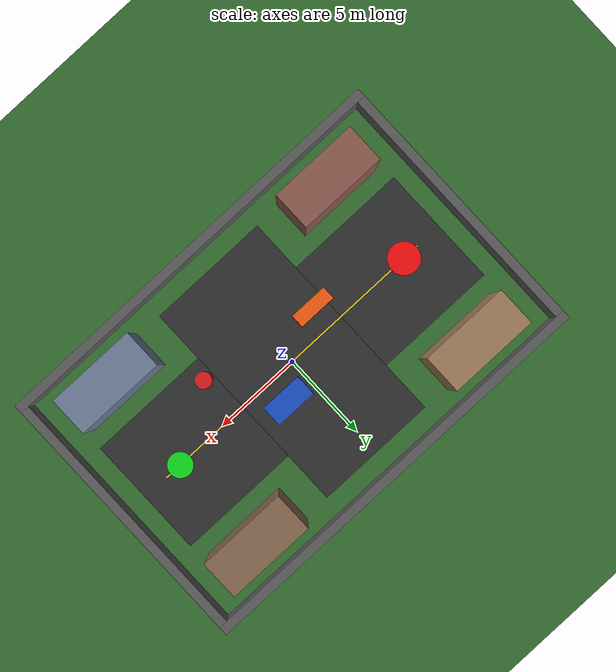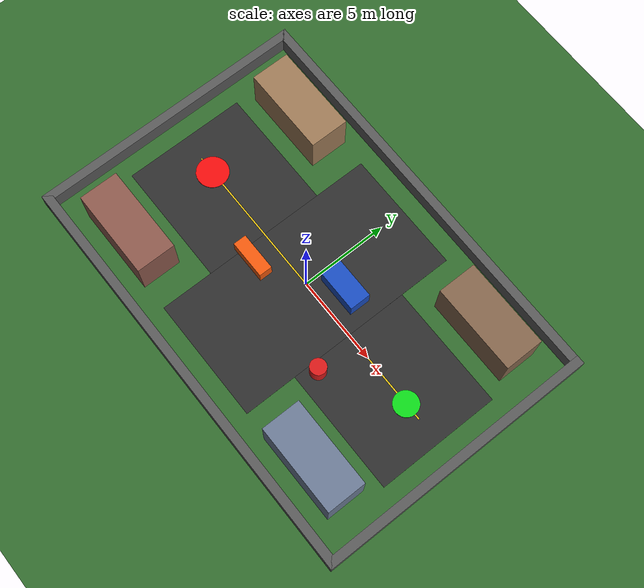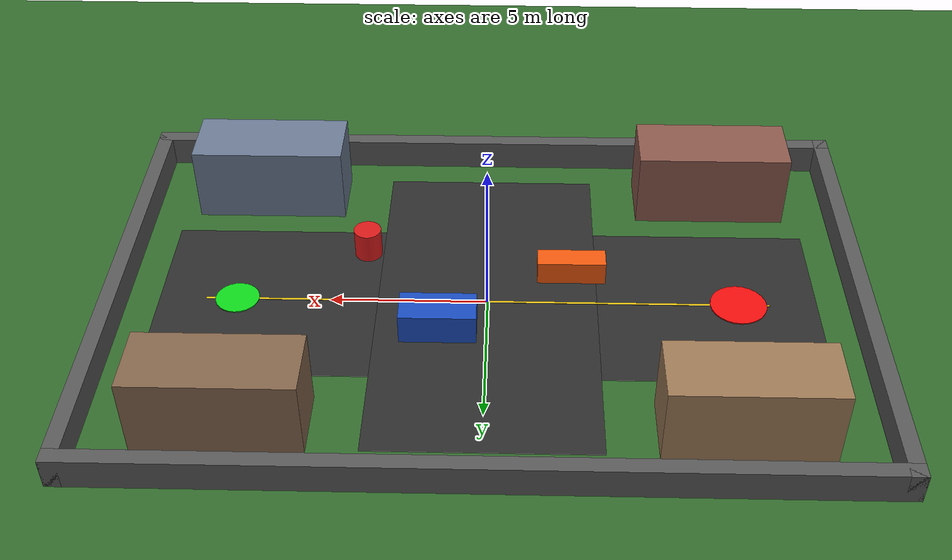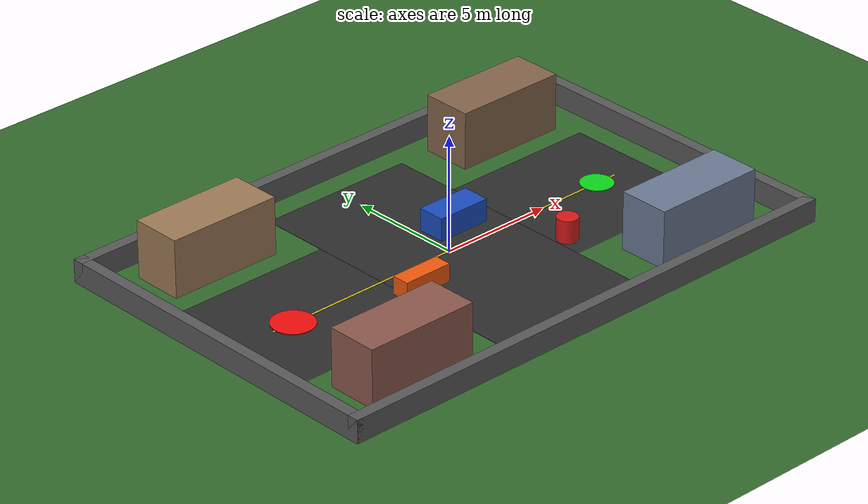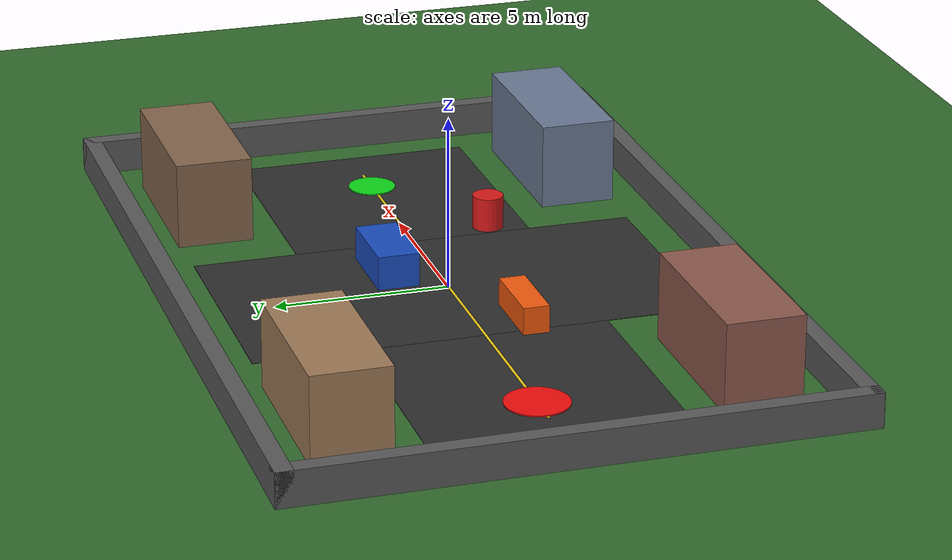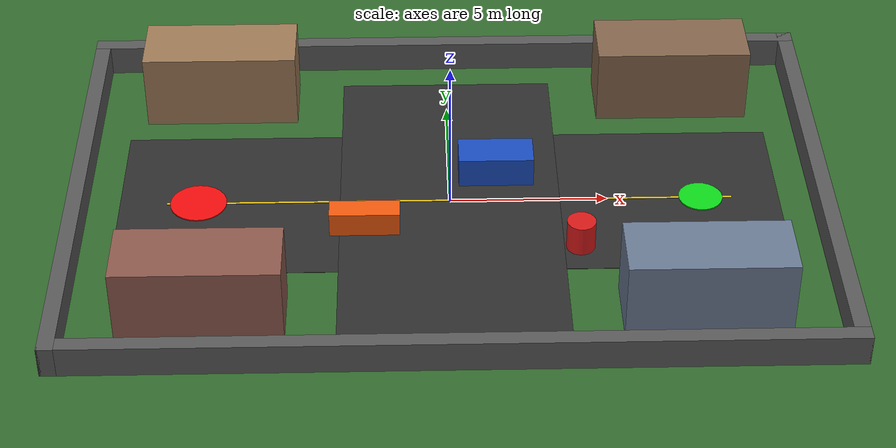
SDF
<?xml version="1.0"?>
<sdf version="1.6">
  <world name="small_city_training">

    <!-- Compact training world for Group 34 Q-learning.
         All obstacles use simple collision geometry so that Gazebo and the laser
         sensor have less work to do than in the full city map. -->

    <gui>
      <camera name="user_camera">
        <pose>0 -18 14 0 0.55 1.57</pose>
      </camera>
    </gui>

    <scene>
      <grid>false</grid>
      <origin_visual>false</origin_visual>
      <ambient>0.85 0.85 0.85 1</ambient>
      <background>0.45 0.55 0.65 1</background>
    </scene>

    <physics name="default_physics" default="1" type="ode">
      <max_step_size>0.005</max_step_size>
      <real_time_factor>1.0</real_time_factor>
      <real_time_update_rate>200</real_time_update_rate>
    </physics>

    <light type="directional" name="sun">
      <pose>0 0 20 0 0 0</pose>
      <cast_shadows>true</cast_shadows>
      <diffuse>0.9 0.9 0.9 1</diffuse>
      <specular>0.2 0.2 0.2 1</specular>
      <direction>-0.5 0.2 -0.8</direction>
    </light>

    <!-- Ground -->
    <model name="ground">
      <static>true</static>
      <link name="link">
        <collision name="collision">
          <geometry>
            <plane>
              <normal>0 0 1</normal>
              <size>24 16</size>
            </plane>
          </geometry>
          <surface>
            <friction>
              <ode>
                <mu>1.0</mu>
                <mu2>1.0</mu2>
              </ode>
            </friction>
          </surface>
        </collision>
        <visual name="visual">
          <geometry>
            <plane>
              <normal>0 0 1</normal>
              <size>24 16</size>
            </plane>
          </geometry>
          <material>
            <ambient>0.20 0.42 0.18 1</ambient>
            <diffuse>0.20 0.42 0.18 1</diffuse>
          </material>
        </visual>
      </link>
    </model>

    <!-- Cross-shaped road: visuals only; the ground plane provides collision. -->
    <model name="road_surface">
      <static>true</static>
      <link name="horizontal_road">
        <pose>0 0 0.006 0 0 0</pose>
        <visual name="visual">
          <geometry><box><size>21 7 0.012</size></box></geometry>
          <material>
            <ambient>0.18 0.18 0.18 1</ambient>
            <diffuse>0.18 0.18 0.18 1</diffuse>
          </material>
        </visual>
      </link>
      <link name="vertical_road">
        <pose>0 0 0.007 0 0 0</pose>
        <visual name="visual">
          <geometry><box><size>7 13 0.014</size></box></geometry>
          <material>
            <ambient>0.18 0.18 0.18 1</ambient>
            <diffuse>0.18 0.18 0.18 1</diffuse>
          </material>
        </visual>
      </link>
      <link name="centre_line">
        <pose>0 0 0.016 0 0 0</pose>
        <visual name="visual">
          <geometry><box><size>18 0.08 0.012</size></box></geometry>
          <material>
            <ambient>0.95 0.80 0.08 1</ambient>
            <diffuse>0.95 0.80 0.08 1</diffuse>
          </material>
        </visual>
      </link>
    </model>

    <!-- Simple perimeter buildings. They are visible, collidable and lightweight. -->
    <model name="north_west_building">
      <static>true</static>
      <pose>-7.5 5.5 1.25 0 0 0</pose>
      <link name="link">
        <collision name="collision"><geometry><box><size>5.0 2.2 2.5</size></box></geometry></collision>
        <visual name="visual">
          <geometry><box><size>5.0 2.2 2.5</size></box></geometry>
          <material><ambient>0.62 0.48 0.34 1</ambient><diffuse>0.62 0.48 0.34 1</diffuse></material>
        </visual>
      </link>
    </model>

    <model name="north_east_building">
      <static>true</static>
      <pose>7.5 5.5 1.25 0 0 0</pose>
      <link name="link">
        <collision name="collision"><geometry><box><size>5.0 2.2 2.5</size></box></geometry></collision>
        <visual name="visual">
          <geometry><box><size>5.0 2.2 2.5</size></box></geometry>
          <material><ambient>0.52 0.40 0.30 1</ambient><diffuse>0.52 0.40 0.30 1</diffuse></material>
        </visual>
      </link>
    </model>

    <model name="south_west_building">
      <static>true</static>
      <pose>-7.5 -5.5 1.25 0 0 0</pose>
      <link name="link">
        <collision name="collision"><geometry><box><size>5.0 2.2 2.5</size></box></geometry></collision>
        <visual name="visual">
          <geometry><box><size>5.0 2.2 2.5</size></box></geometry>
          <material><ambient>0.55 0.35 0.30 1</ambient><diffuse>0.55 0.35 0.30 1</diffuse></material>
        </visual>
      </link>
    </model>

    <model name="south_east_building">
      <static>true</static>
      <pose>7.5 -5.5 1.25 0 0 0</pose>
      <link name="link">
        <collision name="collision"><geometry><box><size>5.0 2.2 2.5</size></box></geometry></collision>
        <visual name="visual">
          <geometry><box><size>5.0 2.2 2.5</size></box></geometry>
          <material><ambient>0.42 0.48 0.58 1</ambient><diffuse>0.42 0.48 0.58 1</diffuse></material>
        </visual>
      </link>
    </model>

    <!-- Two static road obstacles create a learnable S-shaped route.
         They do not completely block the road, so both left and right avoidance
         behaviours remain possible. -->
    <model name="parked_delivery_van">
      <static>true</static>
      <pose>1.5 1.35 0.50 0 0 0</pose>
      <link name="link">
        <collision name="collision">
          <geometry><box><size>2.4 1.2 1.0</size></box></geometry>
        </collision>
        <visual name="visual">
          <geometry><box><size>2.4 1.2 1.0</size></box></geometry>
          <material><ambient>0.10 0.30 0.75 1</ambient><diffuse>0.10 0.30 0.75 1</diffuse></material>
        </visual>
      </link>
    </model>

    <model name="roadworks_barrier">
      <static>true</static>
      <pose>-2.7 -1.35 0.40 0 0 0</pose>
      <link name="link">
        <collision name="collision">
          <geometry><box><size>2.2 0.75 0.8</size></box></geometry>
        </collision>
        <visual name="visual">
          <geometry><box><size>2.2 0.75 0.8</size></box></geometry>
          <material><ambient>0.95 0.35 0.05 1</ambient><diffuse>0.95 0.35 0.05 1</diffuse></material>
        </visual>
      </link>
    </model>

    <model name="moving_pedestrian">
      <static>false</static>
      <pose>4.0 -2.4 0.50 0 0 0</pose>
      <link name="body">
        <gravity>false</gravity>
        <kinematic>true</kinematic>
        <collision name="collision">
          <geometry><cylinder><radius>0.45</radius><length>1.0</length></cylinder></geometry>
        </collision>
        <visual name="visual">
          <geometry><cylinder><radius>0.45</radius><length>1.0</length></cylinder></geometry>
          <material><ambient>0.85 0.10 0.10 1</ambient><diffuse>0.85 0.10 0.10 1</diffuse></material>
        </visual>
      </link>
    </model>

    <!-- Start and goal markers are visual only. -->
    <model name="start_marker">
      <static>true</static>
      <pose>8.0 0.0 0.025 0 0 0</pose>
      <link name="link">
        <visual name="visual">
          <geometry><cylinder><radius>0.70</radius><length>0.05</length></cylinder></geometry>
          <material>
            <ambient>0.05 0.85 0.10 1</ambient>
            <diffuse>0.05 0.85 0.10 1</diffuse>
            <emissive>0.05 0.45 0.05 1</emissive>
          </material>
        </visual>
      </link>
    </model>

    <model name="goal_marker">
      <static>true</static>
      <pose>-8.0 0.0 0.025 0 0 0</pose>
      <link name="link">
        <visual name="visual">
          <geometry><cylinder><radius>0.90</radius><length>0.05</length></cylinder></geometry>
          <material>
            <ambient>0.95 0.05 0.05 1</ambient>
            <diffuse>0.95 0.05 0.05 1</diffuse>
            <emissive>0.50 0.02 0.02 1</emissive>
          </material>
        </visual>
      </link>
    </model>

    <!-- Physical boundary around the 24 m x 16 m area. -->
    <model name="training_area_boundary">
      <static>true</static>

      <link name="north">
        <pose>0 7.75 0.50 0 0 0</pose>
        <collision name="collision"><geometry><box><size>24 0.5 1.0</size></box></geometry></collision>
        <visual name="visual">
          <geometry><box><size>24 0.5 1.0</size></box></geometry>
          <material><ambient>0.35 0.35 0.35 1</ambient><diffuse>0.35 0.35 0.35 1</diffuse></material>
        </visual>
      </link>

      <link name="south">
        <pose>0 -7.75 0.50 0 0 0</pose>
        <collision name="collision"><geometry><box><size>24 0.5 1.0</size></box></geometry></collision>
        <visual name="visual">
          <geometry><box><size>24 0.5 1.0</size></box></geometry>
          <material><ambient>0.35 0.35 0.35 1</ambient><diffuse>0.35 0.35 0.35 1</diffuse></material>
        </visual>
      </link>

      <link name="east">
        <pose>11.75 0 0.50 0 0 0</pose>
        <collision name="collision"><geometry><box><size>0.5 16 1.0</size></box></geometry></collision>
        <visual name="visual">
          <geometry><box><size>0.5 16 1.0</size></box></geometry>
          <material><ambient>0.35 0.35 0.35 1</ambient><diffuse>0.35 0.35 0.35 1</diffuse></material>
        </visual>
      </link>

      <link name="west">
        <pose>-11.75 0 0.50 0 0 0</pose>
        <collision name="collision"><geometry><box><size>0.5 16 1.0</size></box></geometry></collision>
        <visual name="visual">
          <geometry><box><size>0.5 16 1.0</size></box></geometry>
          <material><ambient>0.35 0.35 0.35 1</ambient><diffuse>0.35 0.35 0.35 1</diffuse></material>
        </visual>
      </link>
    </model>

  </world>
</sdf>
